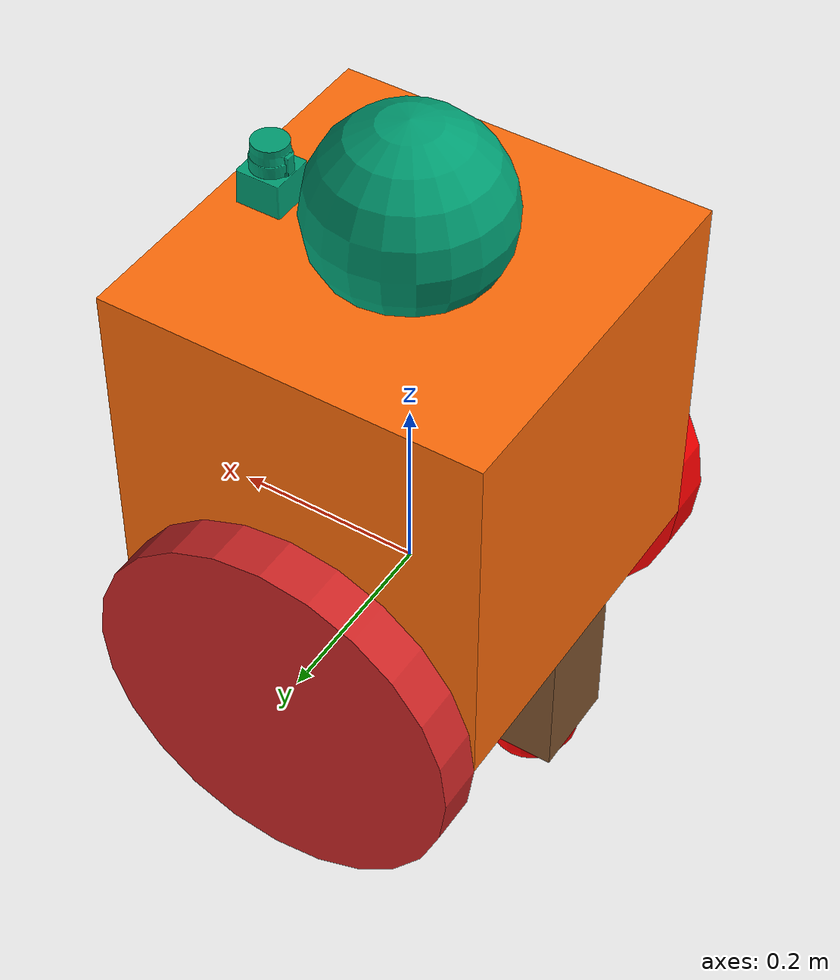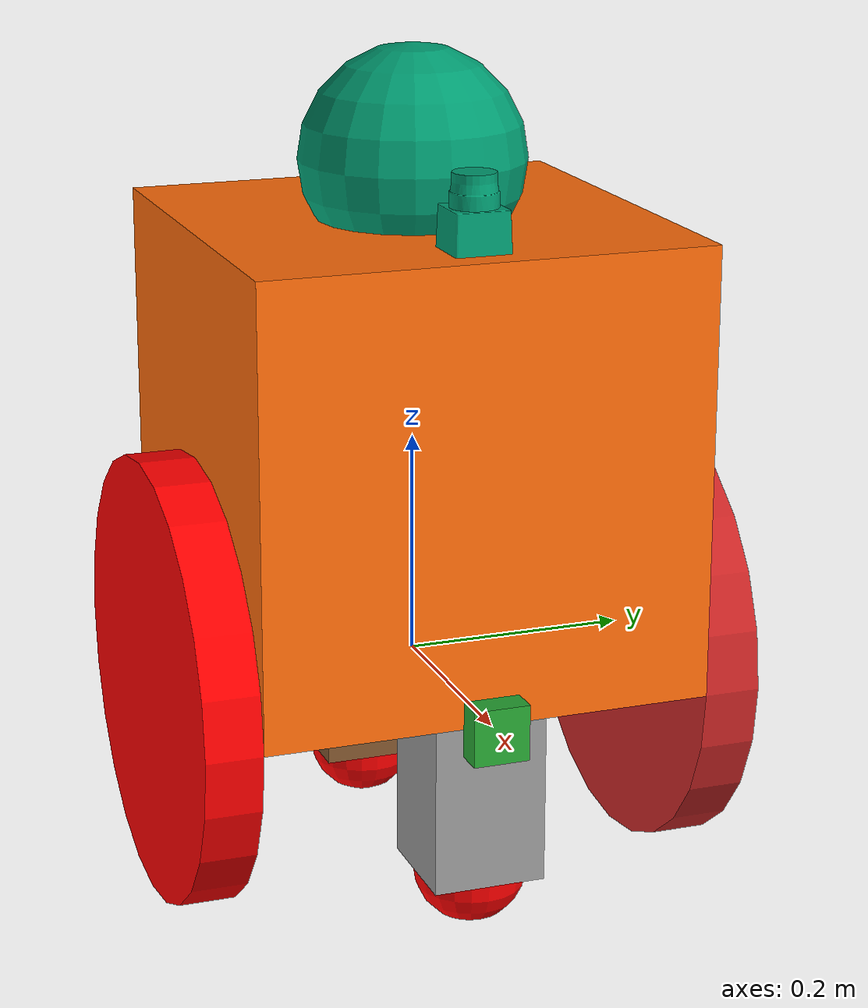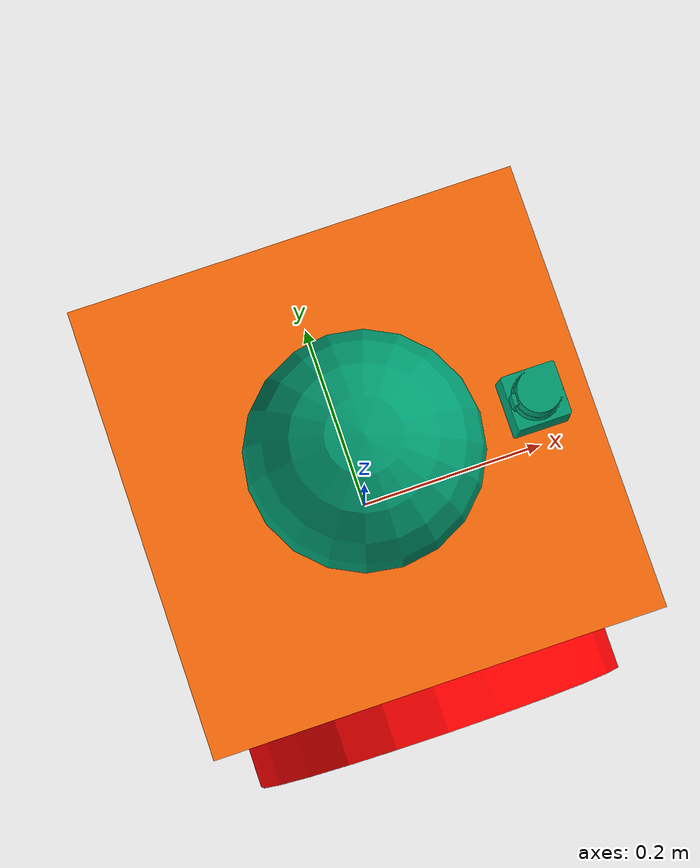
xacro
<robot name="my_robot" xmlns:xacro="http://www.ros.org/wiki/xacro">

<xacro:property name="chassis_size_x" value="0.4" />
<xacro:property name="chassis_size_y" value="0.4" />
<xacro:property name="chassis_size_z" value="0.4" />
<xacro:property name="wheel_radius" value="0.2" />
<xacro:property name="wheel_length" value="0.05" />
<xacro:property name="ground_gap_offset" value="0.1" />
<xacro:property name="small_wheel_radius" value="0.05" />
<xacro:property name="small_wheel_length" value="0.025" />

<xacro:include filename="$(find my_robot)/urdf/my_robot.gazebo"/>

<link name="robot_footprint"></link>

<joint name="robot_footprint" type="fixed">
<orgin xyz="0 0 0" rpy="0 0 0"/>
<parent link="robot_footprint"/>
<child link="chassis"/>
</joint>

<link name='chassis'>
    <pose xyz="0 0 ${chassis_size_z}" rpy="0 0 0" />
    <inertial>
    <mass value="10.0"/>
    <origin xyz="0 0 0" rpy="0 0 0"/>
    <inertia ixx="0.1" ixy="0" ixz="0"
            iyy="0.1" iyz="0"
            izz="0.1"/>
    </inertial>

        <collision name='chassis_collision'>
        <origin xyz="0 0 ${chassis_size_z/2.0}" rpy=" 0 0 0"/>
            <geometry>
            <box size="${chassis_size_x} ${chassis_size_y} ${chassis_size_z}"/>
            </geometry>
        </collision>

        <visual name='chassis_visual'>
        <origin xyz="0 0 ${chassis_size_z/2.0}" rpy=" 0 0 0"/>
            <geometry>
            <box size="${chassis_size_x} ${chassis_size_y} ${chassis_size_z}"/>
            </geometry>
        <material name="Orange"/>
        </visual>
    </link>

<link name='chassis_head'>
    <pose xyz="0 0 0" rpy="0 0 0" />
    <inertial>
    <mass value="0.1"/>
    <origin xyz="0 0 0" rpy="0 0 0"/>
    <inertia ixx="0.1" ixy="0" ixz="0"
            iyy="0.1" iyz="0"
            izz="0.1"/>
    </inertial>

    <collision name='chassis_head_collision'>
    <origin xyz="0 0 ${chassis_size_z + chassis_size_z/8}" rpy=" 0 0 0"/>
        <geometry>
        <sphere radius="${chassis_size_x/4}"/>
        </geometry>
    </collision>

    <visual name='chassis_head_visual'>
    <origin xyz="0 0 ${chassis_size_z + chassis_size_z/8}" rpy=" 0 0 0"/>
        <geometry>
        <sphere radius="${chassis_size_x/4}"/>
        </geometry>
    </visual>
</link>
<joint name="chassis_head_joint" type="fixed">
<parent link="chassis"/>
<child link="chassis_head"/>
</joint>

<link name="back_wheel_chassis">
    <pose xyz="0 0 ${chassis_size_z}" rpy="0 0 0" />
    <inertial>
    <mass value="1.0"/>
    <origin xyz="0 0 0" rpy="0 0 0"/>
    <inertia ixx="0.1" ixy="0" ixz="0"
            iyy="0.1" iyz="0"
            izz="0.1"/>
    </inertial>

    <collision name='back_wheel_chassis_collision'>
    <origin xyz="${-(chassis_size_x/2.0 - ground_gap_offset/2.0)} 0 ${-((chassis_size_z/2.0 - ground_gap_offset/2.0)/2.0)}" rpy=" 0 0 0"/>
        <geometry>
        <box size="${ground_gap_offset} ${ground_gap_offset} ${chassis_size_z/2.0 - ground_gap_offset/2}"/>
        </geometry>
    </collision>

    <visual name='back_wheel_chassis_visual'>
    <origin xyz="${-(chassis_size_x/2.0 - ground_gap_offset/2.0)} 0  ${-((chassis_size_z/2.0 - ground_gap_offset/2.0)/2.0)}" rpy=" 0 0 0"/>
        <geometry>
        <box size="${ground_gap_offset} ${ground_gap_offset} ${chassis_size_z/2.0 - ground_gap_offset/2.0}"/>
        </geometry>
        <material name="brown"/>
    </visual>

</link>
<joint name="back_wheel_chassis_joint" type="fixed">
<parent link="chassis"/>
<child link="back_wheel_chassis"/>
</joint>

<link name="back_chassis_wheel">
    <pose xyz="0 0 0" rpy="0 0 0" />
    <inertial>
    <mass value="0.1"/>
    <origin xyz="0 0 0" rpy="0 0 0"/>
    <inertia ixx="0.1" ixy="0" ixz="0"
            iyy="0.1" iyz="0"
            izz="0.1"/>
    </inertial>

    <collision name='back_chassis_wheel_collision'>
    <origin xyz="0 0 0" rpy="0 0 0"/>
        <geometry>
        <sphere radius="${ground_gap_offset/2.0}"/>
        </geometry>
    </collision>

    <visual name='back_chassis_wheel_visual'>
    <origin xyz="0 0 0" rpy="0 0 0"/>
        <geometry>
        <sphere radius="${ground_gap_offset/2.0}"/>
        </geometry>
        <material name = "back_chassis_wheel">
            <color rgba="1 0 0 1"/>
            </material>
    </visual>
</link>

<joint name="back_chassis_caster_hinge" type="continuous">
<origin xyz="${-(chassis_size_x/2.0 - ground_gap_offset/2.0)} 0  ${-((chassis_size_z/2.0- ground_gap_offset/2.0))}" rpy="0 0 0"/>
<parent link="chassis"/>
<child link="back_chassis_wheel"/>
<axis xyz="0 1 0" rpy="0 0 0"/>
<axis2 xyz="1 0 0" rpy="0 0 0"/>
</joint>

<link name="front_wheel_chassis">
    <pose xyz="0 0 ${chassis_size_z}" rpy="0 0 0" />
    <inertial>
    <mass value="1.0"/>
    <origin xyz="0 0 0" rpy="0 0 0"/>
    <inertia ixx="0.1" ixy="0" ixz="0"
            iyy="0.1" iyz="0"
            izz="0.1"/>
    </inertial>

          <collision name='front_wheel_chassis_collision'>
        <origin xyz="${(chassis_size_x/2.0 - ground_gap_offset/2.0)} 0  ${-((chassis_size_z/2.0 - ground_gap_offset/2.0)/2.0)}" rpy=" 0 0 0"/>
            <geometry>
            <box size="${ground_gap_offset} ${ground_gap_offset} ${chassis_size_z/2.0 - ground_gap_offset/2.0}"/>
            </geometry>
        </collision>

        <visual name='front_wheel_chassis_visual'>
        <origin xyz="${(chassis_size_x/2.0 - ground_gap_offset/2.0)} 0  ${-((chassis_size_z/2.0- ground_gap_offset/2.0)/2.0)}" rpy=" 0 0 0"/>
            <geometry>
            <box size="${ground_gap_offset} ${ground_gap_offset} ${chassis_size_z/2.0 - ground_gap_offset/2.0}"/>
            </geometry>
          <material name="Gray"/>
        </visual>

</link>
<joint name="front_wheel_chassis_joint" type="fixed">
<orgin xyz="${(chassis_size_x/2.0 - ground_gap_offset/2.0)} 0  ${-((chassis_size_z/2.0- ground_gap_offset/2.0)/2.0)}" rpy="0 0 0"/>
<parent link="chassis"/>
<child link="front_wheel_chassis"/>
</joint>

<link name="front_chassis_wheel">
<pose xyz="0 0 0" rpy="0 0 0" />
     <inertial>
        <mass value="5.0"/>
        <origin xyz="0 0 0" rpy="0 0 0"/>
        <inertia ixx="0.1" ixy="0" ixz="0"
                iyy="0.1" iyz="0"
                izz="0.1"/>
        </inertial>

    <collision name='front_chassis_wheel_collision'>
    <origin xyz="0 0 0" rpy="0 0 0"/>
        <geometry>
        <sphere radius="${ground_gap_offset/2.0}"/>
        </geometry>
    </collision>

    <visual name='front_chassis_wheel_visual'>
    <origin xyz="0 0 0" rpy="0 0 0"/>
        <geometry>
        <sphere radius="${ground_gap_offset/2.0}"/>
        </geometry>
        <material name = "front_chassis_wheel">
            <color rgba="1 0 0 1"/>
            </material>
    </visual>
</link>

<joint name="front_chassis_caster_hinge" type="continuous">
<origin xyz="${(chassis_size_x/2.0 - ground_gap_offset/2.0)} 0  ${-((chassis_size_z/2.0- ground_gap_offset/2.0))}" rpy="0 0 0"/>
<parent link="chassis"/>
<child link="front_chassis_wheel"/>
<axis xyz="0 1 0" rpy="0 0 0"/>
<axis2 xyz="1 0 0" rpy="0 0 0"/>
</joint>

<link name='left_wheel'>
<pose xyz="0 0 0" rpy="0 0 0" />
        <inertial>
        <mass value="5.0"/>
        <origin xyz="0 0 0" rpy="0 0 0"/>
        <inertia ixx="0.1" ixy="0" ixz="0"
                iyy="0.1" iyz="0"
                izz="0.1"/>
        </inertial>

    <collision name='left_wheel_collision'>
        <origin xyz="0 ${wheel_length/2} 0" rpy="0 1.5707 1.5707"/>
            <geometry>
            <cylinder radius="${wheel_radius}" length="${wheel_length}"/>
            </geometry>
            </collision>

        <visual name='left_wheel_visual'>
        <origin xyz="0 ${wheel_length/2} 0" rpy=" 0 1.5707 1.5707"/>
            <geometry>
            <cylinder radius="${wheel_radius}" length="${wheel_length}"/>
            </geometry>
            <material name="left_wheel"/>
            </visual>
</link>

<joint name="left_wheel_hinge" type="continuous">
<origin xyz="0 ${chassis_size_y/2} 0" rpy="0 0 0"/>
<parent link="chassis"/>
<child link="left_wheel"/>
<axis xyz="0 1 0" rpy="0 0 0"/>
</joint>

<link name='right_wheel'>
<pose xyz="0 0 0" rpy="0 0 0" />
        <inertial>
        <mass value="5.0"/>
        <origin xyz="0 0 0" rpy="0 0 0"/>
        <inertia ixx="0.1" ixy="0" ixz="0"
                iyy="0.1" iyz="0"
                izz="0.1"/>
        </inertial>

    <collision name='right_wheel_collision'>
        <origin xyz="0 ${-wheel_length/2} 0" rpy="0 1.5707 1.5707"/>
            <geometry>
            <cylinder radius="${wheel_radius}" length="${wheel_length}"/>
            </geometry>
        </collision>

        <visual name='right_wheel_visual'>
        <origin xyz="0 ${-wheel_length/2} 0" rpy=" 0 1.5707 1.5707"/>
            <geometry>
            <cylinder radius="${wheel_radius}" length="${wheel_length}"/>
            </geometry>
            <material name = "right_wheel">
            <color rgba="1 0 0 1"/>
            </material>
        </visual>
</link>

<joint name="right_wheel_hinge" type="continuous">
<origin xyz="0 ${-chassis_size_y/2} 0" rpy="0 0 0"/>
<parent link="chassis"/>
<child link="right_wheel"/>
<axis xyz="0 1 0" rpy="0 0 0"/>
</joint>

<!---camera-->

<link name="camera">
 <box_inertia m="0.1" x="0.05" y="0.05" z="0.05">
 <origin xyz="0 0 0" rpy="0 0 0" />
</box_inertia>
    <inertial>
    <mass value="0.1"/>
    <origin xyz="0 0 0" rpy="0 0 0"/>
    <inertia ixx="1e-6" ixy="0" ixz="0"
            iyy="1e-6" iyz="0"
            izz="1e-6"/>
    </inertial>
    <visual name='camera_visual'>
    <origin xyz="0 0 0" rpy="0 0 0"/>
        <geometry>
        <box size="0.05 0.05 0.05"/>
        </geometry>
        <material name="camera"/>
    </visual>

    <collision name='camera_collision'>
    <origin xyz="0 0 0" rpy="0 0 0"/>
        <geometry>
        <box size="0.05 0.05 0.05"/>
        </geometry>
    </collision>

</link>

<!--lidar-->
<link name="hokuyo">

    <inertial>
    <mass value="1e-5"/>
    <origin xyz="0 0 0" rpy="0 0 0"/>
    <inertia ixx="1e-6" ixy="0" ixz="0"
            iyy="1e-6" iyz="0"
            izz="1e-6"/>
    </inertial>

    <collision name='hokuyo_collision'>
    <origin xyz="0 0 0" rpy="0 0 0"/>
        <geometry>
        <mesh filename="package://my_robot/meshes/hokuyo.dae"/>
        </geometry>
    </collision>

    <visual name='hokuyo_visual'>
    <origin xyz="0 0 0" rpy="0 0 0"/>
       <geometry>
        <mesh filename="package://my_robot/meshes/hokuyo.dae"/>
        </geometry>
    </visual>

</link>

<joint type="fixed" name="camera_joint">
<origin xyz="${chassis_size_y/2.0} 0 0" rpy="0 0 0"/>
<child link="camera"/>
<parent link="chassis"/>
<axis xyz="0 1 0" rpy="0 0 0"/>
<limit effort="10000" velocity="1000"/>
<dynamics damping="1.0" friction="1.0"/>
</joint>

<link name="camera_link_optical">
</link>

<joint name="camera_optical_joint" type="fixed">
<origin xyz="0 0 0" rpy="-1.5707 0 -1.5707"/>
<parent link="camera"/>
<child link="camera_link_optical"/>
</joint>

<joint type="fixed" name="hokuyo_joint">
<origin xyz="${(chassis_size_y/2.0)-0.05} 0 ${chassis_size_z+0.03}" rpy="0 0 0"/>
<child link="hokuyo"/>
<parent link="chassis"/>
<axis xyz="0 1 0" rpy="0 0 0"/>
<limit effort="10000" velocity="1000"/>
<dynamics damping="1.0" friction="1.0"/>
</joint>

<gazebo reference="camera">
    <material>Gazebo/Green</material>
  </gazebo>

   <gazebo reference="back_wheel_chassis">
    <mu1>0.2</mu1>
    <mu2>0.2</mu2>
    <material>Gazebo/Orange</material>
  </gazebo>

  <gazebo reference="front_wheel_chassis">
      <mu1>0.2</mu1>
    <mu2>0.2</mu2>
    <material>Gazebo/Orange</material>
  </gazebo>

   <gazebo reference="left_wheel">
    <material>Gazebo/Red</material>
  </gazebo>

   <gazebo reference="right_wheel">
    <material>Gazebo/Red</material>
  </gazebo>
  <gazebo reference="back_chassis_wheel">
    <material>Gazebo/Red</material>
  </gazebo>
   <gazebo reference="front_chassis_wheel">
    <material>Gazebo/Red</material>
  </gazebo>

  <gazebo reference="chassis">
    <material>Gazebo/Orange</material>
  </gazebo>

</robot>

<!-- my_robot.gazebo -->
<robot>

  <material name="blue">
    <color rgba="0 0 0.8 1"/>
  </material>

    <material name="Yellow">
    <color rgba="1 1 0 1"/>
  </material>

  <material name="white">
    <color rgba="1 1 1 1"/>
  </material>

    <material name="Orange">
    <color rgba="${255/255} ${108/255} ${10/255} 1.0"/>
  </material>

  <gazebo>
    <plugin name="differential_drive_controller" filename="libgazebo_ros_diff_drive.so">
      <legacyMode>false</legacyMode>
      <alwaysOn>true</alwaysOn>
      <updateRate>10</updateRate>
      <leftJoint>left_wheel_hinge</leftJoint>
      <rightJoint>right_wheel_hinge</rightJoint>
      <wheelSeparation>0.4</wheelSeparation>
      <wheelDiameter>0.4</wheelDiameter>
      <torque>10</torque>
      <commandTopic>cmd_vel</commandTopic>
      <odometryTopic>odom</odometryTopic>
      <odometryFrame>odom</odometryFrame>
      <robotBaseFrame>robot_footprint</robotBaseFrame>
      <publishWheelTF>false</publishWheelTF>
      <publishWheelJointState>false</publishWheelJointState>
      <rosDebugLevel>na</rosDebugLevel>
      <wheelAcceleration>0</wheelAcceleration>
      <wheelTorque>5</wheelTorque>
      <odometrySource>world</odometrySource>
      <publishTf>1</publishTf>
      <publishOdomTF>true</publishOdomTF>
    </plugin>
  </gazebo>

  <!-- hokuyo -->
  <gazebo reference="hokuyo">
    <sensor type="ray" name="head_hokuyo_sensor">
      <pose>0 0 0 0 0 0</pose>
      <visualize>false</visualize>
      <update_rate>40</update_rate>
      <ray>
        <scan>
          <horizontal>
            <samples>720</samples>
            <resolution>1</resolution>
            <min_angle>-1.570796</min_angle>
            <max_angle>1.570796</max_angle>
          </horizontal>
        </scan>
        <range>
          <min>0.10</min>
          <max>30.0</max>
          <resolution>0.01</resolution>
        </range>
        <noise>
          <type>gaussian</type>
          <mean>0.0</mean>
          <stddev>0.01</stddev>
        </noise>
      </ray>
      <plugin name="gazebo_ros_head_hokuyo_controller" filename="libgazebo_ros_laser.so">
        <topicName>/scan</topicName>
        <frameName>hokuyo</frameName>
      </plugin>
    </sensor>
  </gazebo>

<!-- RGBD Camera -->
  <gazebo reference="camera">
    <sensor type="depth" name="camera1">
        <always_on>1</always_on>
        <update_rate>20.0</update_rate>
        <visualize>true</visualize>
        <camera>
            <horizontal_fov>1.047</horizontal_fov>
            <image>
                <width>640</width>
                <height>480</height>
                <format>R8G8B8</format>
            </image>
            <depth_camera>

            </depth_camera>
            <clip>
                <near>0.1</near>
                <far>20</far>
            </clip>
        </camera>
         <plugin name="camera_controller" filename="libgazebo_ros_openni_kinect.so">
            <alwaysOn>true</alwaysOn>
            <updateRate>10.0</updateRate>
            <cameraName>camera</cameraName>
            <frameName>camera_link_optical</frameName>
            <imageTopicName>rgb/image_raw</imageTopicName>
            <depthImageTopicName>depth/image_raw</depthImageTopicName>
            <pointCloudTopicName>depth/points</pointCloudTopicName>
            <cameraInfoTopicName>rgb/camera_info</cameraInfoTopicName>
            <depthImageCameraInfoTopicName>depth/camera_info</depthImageCameraInfoTopicName>
            <pointCloudCutoff>0.4</pointCloudCutoff>
                <hackBaseline>0.07</hackBaseline>
                <distortionK1>0.0</distortionK1>
                <distortionK2>0.0</distortionK2>
                <distortionK3>0.0</distortionK3>
                <distortionT1>0.0</distortionT1>
                <distortionT2>0.0</distortionT2>
            <CxPrime>0.0</CxPrime>
            <Cx>0.0</Cx>
            <Cy>0.0</Cy>
            <focalLength>0.0</focalLength>
            </plugin>
    </sensor>
  </gazebo>

</robot>
